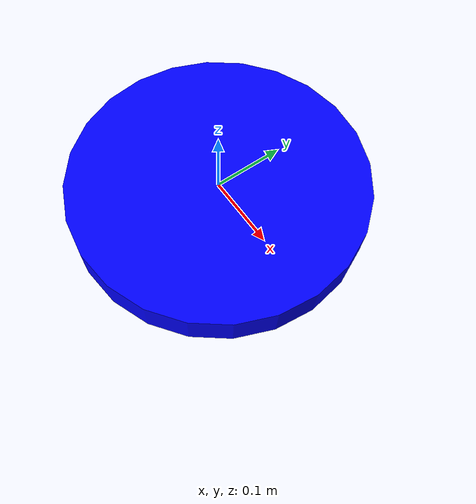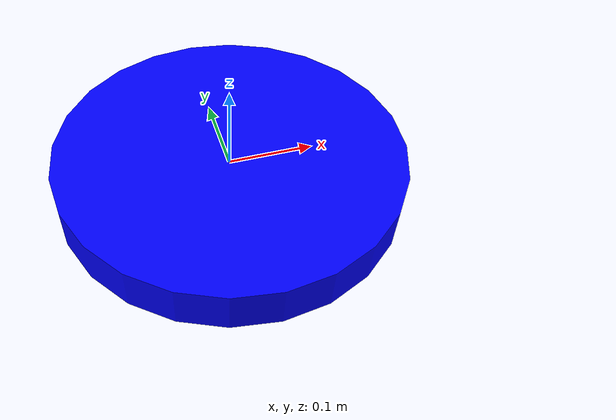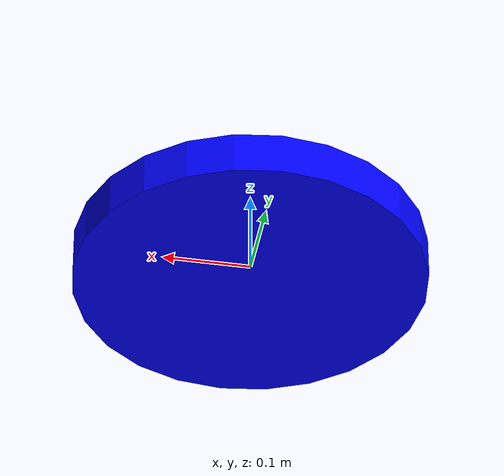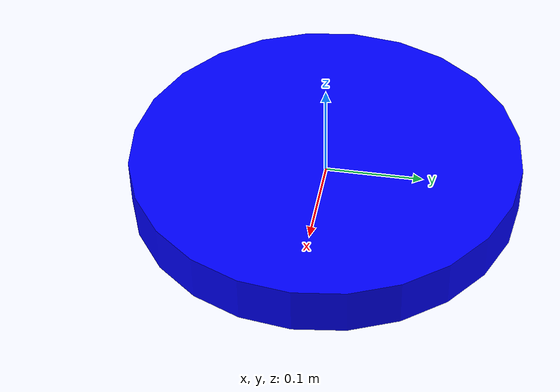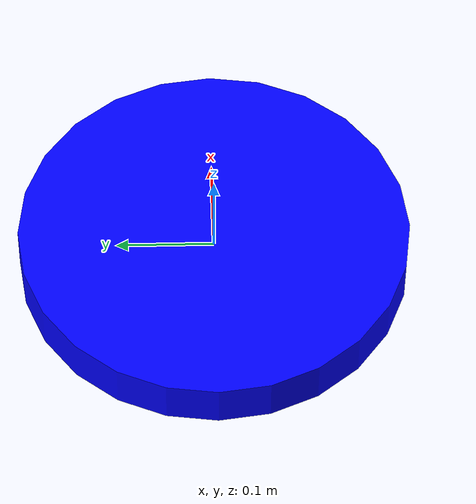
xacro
<robot xmlns:xacro="http://www.ros.org/wiki/xacro" name="supre_robot">

  <!-- Enable setting arguments from the launch file -->
  <xacro:arg name="use_mock_hardware" default="false" />
  <xacro:arg name="prefix" default="" />
  <xacro:arg name="param_can_device_index" default="1" />
  <xacro:arg name="param_can_baud_rate" default="1000" />
  <xacro:arg name="param_device" default="/dev/ttyTHS1" />
  <xacro:arg name="param_baud_rate" default="115200" />
  <xacro:arg name="param_max_stroke" default="0.04" />

  <xacro:include filename="$(find supre_robot_control)/urdf/supre_robot_description.urdf.xacro" />
  <!-- Import joints ros2_control description -->
  <xacro:include filename="$(find supre_robot_control)/ros2_control/follower_joints.ros2_control.xacro" />

  <!-- Import gripper description -->
  <xacro:include filename="$(find supre_robot_control)/ros2_control/gripper.ros2_control.xacro" />

  <link name="world"/>

  <xacro:create_robot prefix="$(arg prefix)">
  </xacro:create_robot>

  <xacro:gripper_system
    name="FollowerMisumiGripper" prefix="$(arg prefix)"
    use_mock_hardware="$(arg use_mock_hardware)"
    param_device="$(arg param_device)"
    param_baud_rate="$(arg param_baud_rate)"
    param_max_stroke="$(arg param_max_stroke)" />

  <xacro:joints_system
    name="FollowerEyouSystem" prefix="$(arg prefix)"
    use_mock_hardware="$(arg use_mock_hardware)"
    param_can_device_index="$(arg param_can_device_index)"
    param_can_baud_rate="$(arg param_can_baud_rate)" />
</robot>

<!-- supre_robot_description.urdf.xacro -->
<robot xmlns:xacro="http://www.ros.org/wiki/xacro">

  <xacro:macro name="create_robot" params="prefix">
    <!-- Used for fixing robot to Gazebo 'world' -->

    <joint name="${prefix}base_joint" type="fixed">
        <parent link="world"/>
        <child link="${prefix}base_link"/>
        <origin xyz="0 0 0" rpy="0 0 0"/>
    </joint>

    <link name="${prefix}base_link">
        <visual>
            <geometry>
                <cylinder length="0.05" radius="0.2"/>
            </geometry>
            <material name="blue">
                <color rgba="0.0 0.0 1.0 1.0"/>
            </material>
        </visual>
        <collision>
            <geometry>
                <cylinder length="0.05" radius="0.2"/>
            </geometry>
        </collision>
    </link>

    <link name="${prefix}gripper_finger_link">
        <visual>
            <geometry>
                <box size="0.1 0.02 0.02"/>
            </geometry>
        </visual>
        <collision>
            <geometry>
                <box size="0.1 0.02 0.02"/>
            </geometry>
        </collision>
        <inertial>
            <mass value="0.1"/>
            <inertia ixx="0.001" ixy="0" ixz="0" iyy="0.001" iyz="0" izz="0.001"/>
        </inertial>
    </link>

    <joint name="${prefix}gripper_joint" type="prismatic">
        <parent link="${prefix}base_link"/>
        <child link="${prefix}gripper_finger_link"/>
        <origin xyz="0 0 0" rpy="0 0 0"/>
        <axis xyz="1 0 0"/>
        <limit lower="0.0" upper="0.025" effort="100" velocity="0.5"/>
    </joint>
  </xacro:macro>

</robot>
